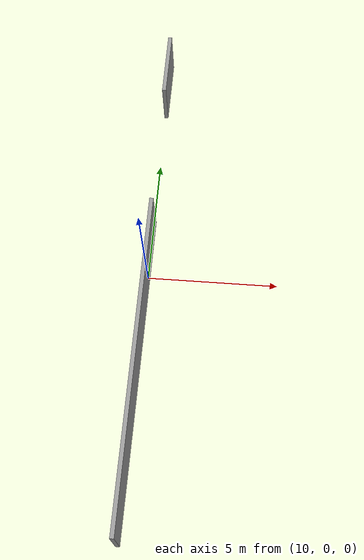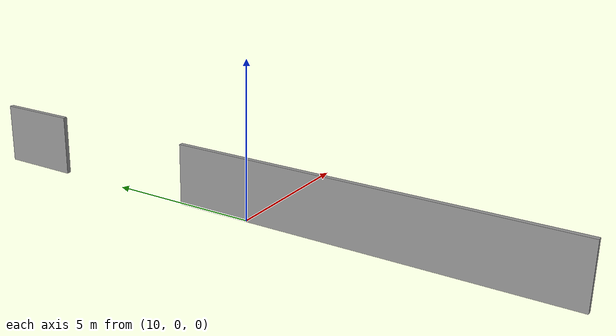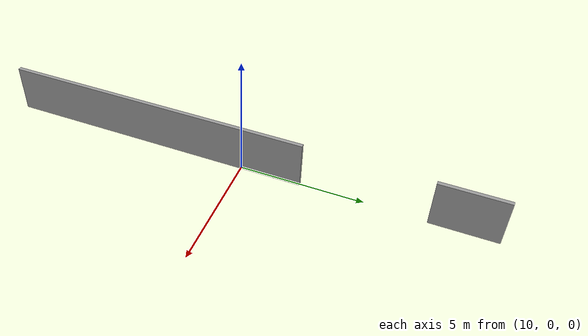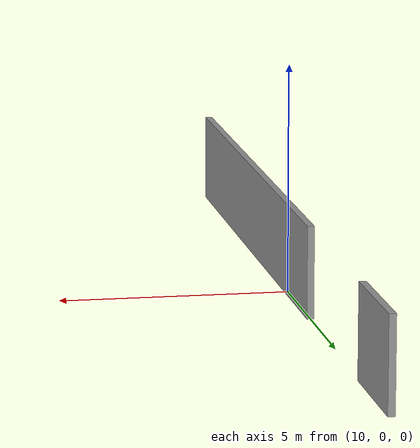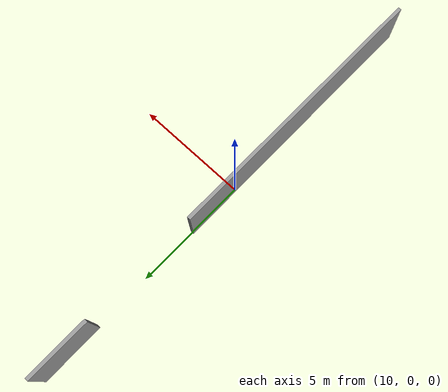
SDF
<?xml version='1.0'?>
<sdf version='1.6'>
  <model name='add_door_wall'>
    <pose frame=''>10 0 0 0 -0 0</pose>
    <link name='Wall_9'>
      <pose frame=''>0 0 0 0 -0 -1.5708</pose>
      <visual name='Wall_9_Visual_0'>
        <pose frame=''>-8.75634 0 1 0 -0 0</pose>
        <geometry>
          <box>
            <size>2.63732 0.15 2</size>
          </box>
        </geometry>
        <material>
          <script>
            <uri>file://media/materials/scripts/gazebo.material</uri>
            <name>Gazebo/Grey</name>
          </script>
          <ambient>1 1 1 1</ambient>
        </material>
        <meta>
          <layer>0</layer>
        </meta>
      </visual>
      <collision name='Wall_9_Collision_0'>
        <geometry>
          <box>
            <size>2.63732 0.15 2</size>
          </box>
        </geometry>
        <pose frame=''>-8.75634 0 1 0 -0 0</pose>
      </collision>
      <visual name='Wall_9_Visual_1'>
        <pose frame=''>3.80616 0 1 0 -0 0</pose>
        <geometry>
          <box>
            <size>12.5377 0.15 2</size>
          </box>
        </geometry>
        <material>
          <script>
            <uri>file://media/materials/scripts/gazebo.material</uri>
            <name>Gazebo/Grey</name>
          </script>
          <ambient>1 1 1 1</ambient>
        </material>
        <meta>
          <layer>0</layer>
        </meta>
      </visual>
      <collision name='Wall_9_Collision_1'>
        <geometry>
          <box>
            <size>12.5377 0.15 2</size>
          </box>
        </geometry>
        <pose frame=''>3.80616 0 1 0 -0 0</pose>
      </collision>
    </link>
    <static>1</static>
  </model>
</sdf>
